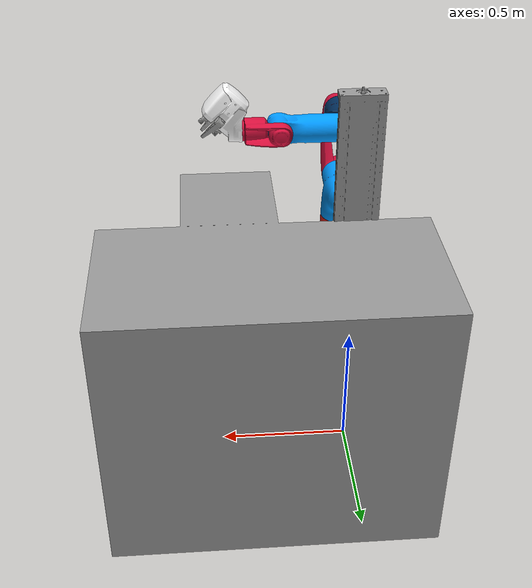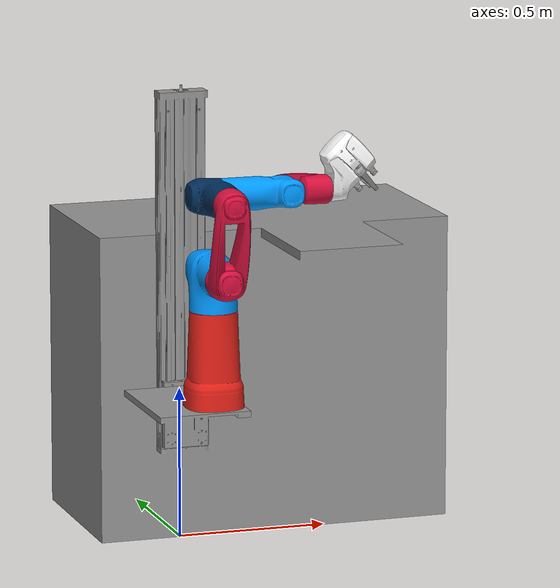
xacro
<?xml version="1.0" ?>
<robot xmlns:xacro="http://www.ros.org/wiki/xacro" name="cobot_esslingen">

  <xacro:include filename="$(find cobot_model)/urdf/robot_model.urdf.xacro"/>
  <xacro:include filename="$(find cobot_model)/urdf/gz_ros_controls.urdf.xacro"/>

  <xacro:arg name="enable_realsense_camera" default="false" />

  <xacro:if value="${'$(arg enable_realsense_camera)' == 'true'}">
    <xacro:arg name="use_nominal_extrinsics" default="false"/>
    <xacro:arg name="add_plug" default="true" />
    <xacro:arg name="use_mesh" default="true" />

    <xacro:include filename="$(find realsense2_description)/urdf/_d435.urdf.xacro" />

    <xacro:sensor_d435 parent="world" use_nominal_extrinsics="$(arg use_nominal_extrinsics)" add_plug="$(arg add_plug)" use_mesh="$(arg use_mesh)">
      <origin xyz="0.441 0.319 1.378" rpy="-0.155 0.843 -1.727"/>
    </xacro:sensor_d435>
  </xacro:if>

</robot>

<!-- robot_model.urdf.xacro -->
<robot xmlns:xacro="http://www.ros.org/wiki/xacro">

    <xacro:arg name="use_collision_meshes" default="true" />

    <link name="world" />
    <joint name="robot_in_world" type="fixed">
        <origin xyz="0.0 0.0 0.32" rpy="0.0 0.0 0.0" />
        <parent link="world" />
        <child link="base_link" />
        <axis xyz="0 0 1" />
    </joint>
    <!-- Links -->
    <link name="base_link" />
    <link name="lin_axis">
        <visual>
            <origin rpy="0.0 0.0 0.0" xyz="0.0 0.0 0.0" />
            <geometry>
                <mesh filename="package://cobot_model/meshes/visual/cobot_base_frame_visual_logo.dae"/>
            </geometry>
            <material name="axis_material">
                <color rgba="0.58 0.58 0.58 1.0"/>
            </material>
        </visual>
        <collision>
            <xacro:if value="${'$(arg use_collision_meshes)' == 'true'}">
                <origin rpy="0.0 0.0 0.0" xyz="0.0 0.0 0.0" />
                <geometry>
                   <mesh filename="package://cobot_model/meshes/collision/cobot_base_frame_collision.stl"/>
                </geometry>
            </xacro:if>
            <xacro:unless value="${'$(arg use_collision_meshes)' == 'true'}">
                <origin rpy="0.0 0.0 0.0" xyz="0.0 -0.03 0.6"/>
                <geometry>
                    <box size="0.162 0.069 1.21"/>
                </geometry>
            </xacro:unless>
        </collision>
        <inertial>
            <mass value="8.6" />
            <origin rpy="0.0 0.0 0.0" xyz="0.0 -0.03 0.6" />
            <inertia ixx="1.03466672" iyy="1.0433778" izz="0.01404452" ixy="0.0" ixz="0.0" iyz="0.0" />
        </inertial>
    </link>
    <link name="lin_axis_carriage">
        <visual>
             <origin rpy="0.0 0.0 0.0" xyz="0.0 0.0 0.0" />
            <geometry>
               <mesh filename="package://cobot_model/meshes/visual/carriage_visual.stl"/>
            </geometry>
            <material name="axis_material">
                <color rgba="0.58 0.58 0.58 1.0"/>
            </material>
        </visual>
        <collision>
            <xacro:if value="${'$(arg use_collision_meshes)' == 'true'}">
                <origin rpy="0.0 0.0 0.0" xyz="0.0 0.0 0.0" />
                <geometry>
                    <mesh filename="package://cobot_model/meshes/collision/carriage_collision.stl"/>
                </geometry>
            </xacro:if>
            <xacro:unless value="${'$(arg use_collision_meshes)' == 'true'}">
                <origin rpy="0.0 0.0 0.0" xyz="-0.06 -0.26 0.2"/>
                <geometry>
                    <box size="0.302 0.431 0.02"/>
                </geometry>
            </xacro:unless>
        </collision>
        <inertial>
            <mass value="0.7" />
            <origin rpy="0.0 0.0 0.0" xyz="0.0 -0.03 0.11" />
            <inertia ixx="0.00287479" iyy="0.00415339" izz="0.00138151" ixy="0.0" ixz="0.0" iyz="0.0" />
        </inertial>
    </link>
    <link name="segment1">
        <visual>
             <origin rpy="0.0 0.0 0.0" xyz="0.0 0.0 0.0" />
            <geometry>
                <!-- using a DAE mesh to display logos -->
               <mesh filename="package://cobot_model/meshes/visual/segment_01_logo.dae"/>
            </geometry>
            <material name="segment1_material">
                <color rgba="0.89 0.133 0.098 1.0" />
            </material>
        </visual>
        <collision>
            <xacro:if value="${'$(arg use_collision_meshes)' == 'true'}">
                <origin rpy="0.0 0.0 0.0" xyz="0.0 0.0 0.0" />
                <geometry>
                    <mesh filename="package://cobot_model/meshes/collision/segment01_collision.stl"/>
                </geometry>
            </xacro:if>
            <xacro:unless value="${'$(arg use_collision_meshes)' == 'true'}">
            <origin rpy="0.0 0.0 0.0" xyz="0.0 0.0 -0.156"/>
                <geometry>
                    <cylinder radius="0.09" length="0.312"/>
                </geometry>
            </xacro:unless>
        </collision>
        <inertial>
            <mass value="7.3" />
             <origin rpy="0.0 0.0 0.0" xyz="0.0 0.0 -0.156" />
            <inertia ixx="0.0697588" iyy="0.0697588" izz="0.0210824" ixy="0.0" ixz="0.0" iyz="0.0" />
        </inertial>
    </link>
    <link name="segment2">
        <visual>
            <origin rpy="0.0 0.0 0.0" xyz="0.0 0.0 0.0" />
            <geometry>
                <mesh filename="package://cobot_model/meshes/visual/segment02_visual.stl"/>
            </geometry>
            <material name="segment2_material">
                <color rgba="0 0.6 1.0 1.0" />
            </material>
        </visual>
        <collision>
            <xacro:if value="${'$(arg use_collision_meshes)' == 'true'}">
                <origin rpy="0.0 0.0 0.0" xyz="0.0 0.0 0.0" />
                <geometry>
                   <mesh filename="package://cobot_model/meshes/collision/segment02_collision.stl"/>
                </geometry>
            </xacro:if>
            <xacro:unless value="${'$(arg use_collision_meshes)' == 'true'}">
                <origin rpy="0.0 0.0 0.0" xyz="0.0 0.0 0.09"/>
                <geometry>
                    <box size="0.155 0.238 0.186"/>
                </geometry>
            </xacro:unless>
        </collision>
        <inertial>
            <mass value="5.0" />
            <origin rpy="0.0 0.0 0.0" xyz="0.0 0.0 0.119" />
            <inertia ixx="0.03441292" iyy="0.02442542" izz="0.03361208" ixy="0.0" ixz="0.0" iyz="0.0" />
        </inertial>
    </link>
    <link name="segment3">
        <visual>
            <origin rpy="0.0 0.0 0.0" xyz="0.0 0.0 0.0" />
            <geometry>
                <mesh filename="package://cobot_model/meshes/visual/segment03_visual.stl"/>
            </geometry>
            <material name="segment3_material">
               <color rgba="0.835 0.059 0.235 1.0" />
            </material>
        </visual>
        <collision>
            <xacro:if value="${'$(arg use_collision_meshes)' == 'true'}">
                <origin rpy="0.0 0.0 0.0" xyz="0.0 0.0 0.0" />
                <geometry>
                    <mesh filename="package://cobot_model/meshes/collision/segment03_collision.stl"/>
                </geometry>
            </xacro:if>
            <xacro:unless value="${'$(arg use_collision_meshes)' == 'true'}">
                <origin rpy="1.5708 0.0 0.0" xyz="0.0 0.126 0.06"/>
                <geometry>
                    <cylinder radius="0.06" length="0.372"/>
                </geometry>
            </xacro:unless>
        </collision>
        <inertial>
            <mass value="2.5" />
            <origin rpy="0.0 0.0 0.0" xyz="0.0 0.126 0.06" />
            <inertia ixx="0.06515833" ixy="0.0" ixz="0.0" iyy="0.01316667" iyz="-0.0189" izz="0.05607417" />
        </inertial>
    </link>
    <link name="segment4">
        <visual>
            <origin rpy="0.0 0.0 0.0" xyz="0.0 0.0 0.0" />
            <geometry>
                <mesh filename="package://cobot_model/meshes/visual/segment04_visual.stl"/>
            </geometry>
            <material name="segment4_material">
                <color rgba="0.004 0.176 0.353 1.0" />
            </material>
        </visual>
        <collision>
            <xacro:if value="${'$(arg use_collision_meshes)' == 'true'}">
                <origin rpy="0.0 0.0 0.0" xyz="0.0 0.0 0.0" />
                <geometry>
                    <mesh filename="package://cobot_model/meshes/collision/segment04_collision.stl"/>
                </geometry>
            </xacro:if>
            <xacro:unless value="${'$(arg use_collision_meshes)' == 'true'}">
                <origin rpy="0.0 0.0 0.0" xyz="0.0 0.0 -0.1125"/>
                <geometry>
                    <cylinder radius="0.07" length="0.225"/>
                </geometry>
            </xacro:unless>
        </collision>
        <inertial>
            <mass value="3.4" />
            <origin rpy="0.0 0.0 0.0" xyz="0.0 0.0 -0.112" />
            <inertia ixx="0.01850875" ixy="0.0" ixz="0.0" iyy="0.01850875" iyz="0.0" izz="0.00833" />
        </inertial>
    </link>
    <link name="segment5">
        <visual>
            <origin rpy="0.0 0.0 0.0" xyz="0.0 0.0 0.0" />
            <geometry>
                <mesh filename="package://cobot_model/meshes/visual/segment05_visual.stl"/>
            </geometry>
            <material name="segment5_material">
                <color rgba="0 0.6 1.0 1.0" />
            </material>
        </visual>
        <collision>
            <xacro:if value="${'$(arg use_collision_meshes)' == 'true'}">
                <origin rpy="0.0 0.0 0.0" xyz="0.0 0.0 0.0" />
                <geometry>
                    <mesh filename="package://cobot_model/meshes/collision/segment05_collision.stl"/>
                </geometry>
            </xacro:if>
            <xacro:unless value="${'$(arg use_collision_meshes)' == 'true'}">
                <origin rpy="0.0 0.0 0.0" xyz="0.0 0.0 0.1"/>
                <geometry>
                    <cylinder radius="0.07" length="0.23"/>
                </geometry>
            </xacro:unless>
        </collision>
        <inertial>
            <mass value="3.0" />
            <origin rpy="0.0 0.0 0.0" xyz="0.0 0.0 0.071" />
            <inertia ixx="0.02173675" iyy="0.02173675" izz="0.0075615" ixy="0.0" ixz="0.0" iyz="0.0" />
        </inertial>
    </link>
    <link name="segment6">
        <visual>
            <origin rpy="0.0 0.0 0.0" xyz="0.0 0.0 0.0" />
            <geometry>
                <mesh filename="package://cobot_model/meshes/visual/segment06_visual.stl"/>
            </geometry>
            <material name="segment6_material">
                <color rgba="0.835 0.059 0.235 1.0" />
            </material>
        </visual>
        <collision>
            <xacro:if value="${'$(arg use_collision_meshes)' == 'true'}">
                <origin rpy="0.0 0.0 0.0" xyz="0.0 0.0 0.0" />
                <geometry>
                    <mesh filename="package://cobot_model/meshes/collision/segment06_collision.stl"/>
                </geometry>
             </xacro:if>
            <xacro:unless value="${'$(arg use_collision_meshes)' == 'true'}">
                <origin rpy="0.0 1.5708 0.0" xyz="-0.12 0.0 -0.04"/>
                <geometry>
                    <cylinder length="0.15" radius="0.04"/>
                </geometry>
            </xacro:unless>
        </collision>
        <inertial>
            <mass value="1.5" />
            <origin rpy="0.0 0.0 0.0" xyz="-0.05 0.0 0.0" />
            <inertia ixx="0.00319363" iyy="0.00513113" izz="0.0061625" ixy="0.0" ixz="0.0" iyz="0.0" />
        </inertial>
    </link>
      <link name="segment7">
        <visual>
            <origin rpy="0.0 0.0 0.0" xyz="0.0 0.0 0.0"/>
            <material name="Aterul">
                <color rgba="1.0 1.0 1.0 1.0"/>
            </material>
            <geometry>
                 <mesh filename="package://cobot_model/meshes/visual/segment07_visual.stl" />
            </geometry>
        </visual>
        <collision>
            <xacro:if value="${'$(arg use_collision_meshes)' == 'true'}">
                <origin rpy="0.0 0.0 0.0" xyz="0.0 0.0 0.0"/>
                <geometry>
                    <mesh filename="package://cobot_model/meshes/collision/segment07_collision.stl"/>
                </geometry>
            </xacro:if>
            <xacro:unless value="${'$(arg use_collision_meshes)' == 'true'}">
                <origin rpy="-0.785398 0.0 0.0" xyz="0.0 0.1 0.05"/>
                <geometry>
                    <box size="0.124 0.135 0.14"/>
                </geometry>
            </xacro:unless>
        </collision>
        <inertial>
            <mass value="4.0"/>
            <!-- tilt the inertia tensor by 45 deg to match the actual mesh
                 => same tilt is applied in the tool_base link -->
            <origin rpy="0.785398 0.0 0.0" xyz="0.0 0.09 0.04"/>
           <inertia ixx="0.01533367" iyy="0.02185067" izz="0.02693367" ixy="0.0" ixz="0.0" iyz="0.0" />
        </inertial>
    </link>
    <link name="finger1">
        <visual>
            <origin rpy="0.0 0.0 0.0" xyz="0.0 0.0 0.0"/>
            <material name="silver">
                <color rgba="0.629 0.629 0.625 1.0" />
            </material>
            <geometry>
                <mesh filename="package://cobot_model/meshes/visual/finger01_visual.stl"/>
            </geometry>
        </visual>
        <collision>
            <xacro:if value="${'$(arg use_collision_meshes)' == 'true'}">
                <origin rpy="0.0 0.0 0.0" xyz="0.0 0.0 0.0"/>
                <geometry>
                        <mesh filename="package://cobot_model/meshes/collision/finger01_collision.stl"/>
                </geometry>
            </xacro:if>
            <xacro:unless value="${'$(arg use_collision_meshes)' == 'true'}">
                <!-- tilt geometric object by 15 deg to match real gripper -->
                <origin rpy="0.0 -0.261799 0.0" xyz="0.046 0.0 0.056"/>
                <geometry>
                    <cylinder length="0.10" radius="0.01"/>
                </geometry>
            </xacro:unless>
        </collision>
        <inertial>
            <mass value="0.05" />
            <origin rpy="0.0 -0.261799 0.0" xyz="0.046 0.0 0.056"/>
            <inertia ixx="3.46666667e-05" iyy="2.64166667e-05" izz="1.78833333e-05" ixy="0.0" ixz="0.0" iyz="0.0" />
        </inertial>
    </link>
    <link name="finger2">
        <visual>
            <origin rpy="0.0 0.0 0.0" xyz="0.0 0.0 0.0"/>
            <material name="silver">
                <color rgba="0.629 0.629 0.625 1.0" />
            </material>
            <geometry>
                <mesh filename="package://cobot_model/meshes/visual/finger02_visual.stl"/>
            </geometry>
        </visual>
        <collision>
            <xacro:if value="${'$(arg use_collision_meshes)' == 'true'}">
                <origin rpy="0.0 0.0 0.0" xyz="0.0 0.0 0.0"/>
                <geometry>
                    <mesh filename="package://cobot_model/meshes/collision/finger02_collision.stl"/>
                </geometry>
            </xacro:if>
            <xacro:unless value="${'$(arg use_collision_meshes)' == 'true'}">
                <origin rpy="0.0 0.261799 0.0" xyz="-0.046 0.0 0.056"/>
                <geometry>
                    <cylinder length="0.10" radius="0.01"/>
                </geometry>
            </xacro:unless>
        </collision>
        <inertial>
            <mass value="0.05" />
            <origin rpy="0.0 0.261799 0.0" xyz="-0.046 0.0 0.056"/>
            <inertia ixx="3.46666667e-05" iyy="2.64166667e-05" izz="1.78833333e-05" ixy="0.0" ixz="0.0" iyz="0.0" />
        </inertial>
    </link>
    <link name="vacuum_gripper_up">
    <visual>
      <origin rpy="0.0 0.0 0.0" xyz="0.0 0.0 0.0"/>
      <material name="silver">
        <color rgba="0.629 0.629 0.625 1.0"/>
      </material>
      <geometry>
        <mesh filename="package://cobot_model/meshes/visual/vacuum_visual.stl"/>
      </geometry>
    </visual>
    <collision>
    <xacro:if value="${'$(arg use_collision_meshes)' == 'true'}">
        <origin rpy="0.0 0.0 0.0" xyz="0.0 0.0 0.0"/>
        <geometry>
            <mesh filename="package://cobot_model/meshes/collision/vacuum_collision.stl"/>
        </geometry>
    </xacro:if>
    <xacro:unless value="${'$(arg use_collision_meshes)' == 'true'}">
        <origin rpy="0.0 0.0 0.0" xyz="0.0 0.0 0.03"/>
        <geometry>
            <cylinder length="0.10" radius="0.01"/>
        </geometry>
    </xacro:unless>
    </collision>
    <inertial>
      <mass value="0.05"/>
      <origin rpy="0.0 0.0 0.0" xyz="0.0 0.0 0.05"/>
      <inertia ixx="2.08333333e-05" ixy="0.0" ixz="0.0" iyy="2.08333333e-05" iyz="0.0" izz="2.08333333e-05"/>
    </inertial>
  </link>
  <link name="vacuum_gripper_down">
    <visual>
      <origin rpy="0.0 0.0 0.0" xyz="0.0 0.0 0.0"/>
      <material name="silver">
        <color rgba="0.629 0.629 0.625 1.0"/>
      </material>
      <geometry>
        <!-- using the same mesh as for the upper vacuum gripper (they look the same in the model) -->
        <mesh filename="package://cobot_model/meshes/visual/vacuum_visual.stl"/>
      </geometry>
    </visual>
    <collision>
        <xacro:if value="${'$(arg use_collision_meshes)' == 'true'}">
            <origin rpy="0.0 0.0 0.0" xyz="0.0 0.0 0.0"/>
            <geometry>
                <!-- using the same mesh as for the upper vacuum gripper (they look the same in the model) -->
                <mesh filename="package://cobot_model/meshes/collision/vacuum_collision.stl"/>
            </geometry>
        </xacro:if>
       <xacro:unless value="${'$(arg use_collision_meshes)' == 'true'}">
            <origin rpy="0.0 0.0 0.0" xyz="0.0 0.0 0.03"/>
            <geometry>
                <cylinder length="0.10" radius="0.01"/>
            </geometry>
       </xacro:unless>
    </collision>
    <inertial>
      <mass value="0.05"/>
      <origin rpy="0.0 0.0 0.0" xyz="0.0 0.0 0.05"/>
      <inertia ixx="2.08333333e-05" ixy="0.0" ixz="0.0" iyy="2.08333333e-05" iyz="0.0" izz="2.08333333e-05"/>
    </inertial>
  </link>

    <link name="flange"/>
    <link name="tool_base"/>

    <link name="gripper_tcp"/>
    <link name="gripper_tcp_world"/>
    <link name="gripper_tcp_world_tilted_up"/>
    <link name="gripper_tcp_world_tilted_down"/>
    <link name="vacuum_up_tcp"/>
    <link name="vacuum_up_tcp_world"/>
    <link name="vacuum_up_tcp_world_tilted_up"/>
    <link name="vacuum_up_tcp_world_tilted_down"/>
    <link name="vacuum_down_tcp"/>
    <link name="vacuum_down_tcp_world"/>
    <link name="vacuum_down_tcp_world_tilted_up"/>
    <link name="vacuum_down_tcp_world_tilted_down"/>

    <!-- Joints -->
    <joint name="joint_0" type="prismatic">
        <origin rpy="0.0 0.0 0.0" xyz="0.0 0.0 0.0" />
        <parent link="lin_axis" />
        <child link="lin_axis_carriage" />
        <axis xyz="0 0 1" />
        <limit effort="300.0" velocity="3.14159" lower="-0.001" upper="0.894" />
    </joint>
    <joint name="mount_fixture" type="fixed">
        <origin rpy="0.0 0.0 0.0" xyz="0.0 -0.37 0.52" />
        <parent link="lin_axis_carriage" />
        <child link="segment1" />
    </joint>
    <joint name="joint_1" type="revolute">
        <origin rpy="0.0 0.0 0.0" xyz="0.0 0.0 0.0"/>
        <parent link="segment1" />
        <child link="segment2" />
        <axis xyz="0 0 1" />
        <limit effort="200.0" velocity="3.14159" lower="-2.37365" upper="2.37365" />
        <dynamics damping="0.0" friction="0.0" />
    </joint>
    <joint name="joint_2" type="revolute">
        <origin rpy="1.5708 0.0 0.0" xyz="0.0 -0.111 0.118"/>
        <parent link="segment2" />
        <child link="segment3" />
        <axis xyz="0 0 1" />
        <limit effort="150.0" velocity="3.14159" lower="-2.26893" upper="0.785398" />
        <dynamics damping="0.0" friction="0.0" />
    </joint>
    <joint name="joint_3" type="revolute">
         <origin rpy="0.0 0.0 0.0" xyz="0.0 0.254 0.06"/>
        <parent link="segment3" />
        <child link="segment4" />
        <axis xyz="0 0 1" />
        <limit effort="100.0" velocity="3.14159" lower="-0.785398" upper="2.26893" />
        <dynamics damping="0.0" friction="0.0" />
    </joint>
    <joint name="joint_4" type="revolute">
        <origin rpy="0.0 1.5708 0.0" xyz="0.062 0.0 -0.168"/>
        <parent link="segment4" />
        <child link="segment5" />
        <axis xyz="0 0 1" />
        <limit effort="50.0" velocity="3.14159" lower="-1.5708" upper="1.5708" />
        <dynamics damping="0.0" friction="0.0" />
    </joint>
    <joint name="joint_5" type="revolute">
        <origin rpy="0.0 1.5708 0.0" xyz="0.042 0.0 0.183"/>
        <parent link="segment5" />
        <child link="segment6" />
        <axis xyz="0 0 1" />
        <limit effort="50.0" velocity="3.14159" lower="-1.5708" upper="1.5708" />
        <dynamics damping="0.0" friction="0.0" />
    </joint>
    <joint name="joint_6" type="revolute">
        <origin rpy="0.0 -1.5708 0.0" xyz="-0.156 0.0 -0.04"/>
        <parent link="segment6"/>
        <child link="segment7"/>
        <axis xyz="0 0 1"/>
        <limit effort="20." lower="-2.37365" upper="2.37365" velocity="3.14159"/>
        <dynamics damping="0.0" friction="0.0"/>
    </joint>
   <joint name="JFix_Base" type="fixed">
        <origin rpy="0.0 0.0 0.0" xyz="0.0 0.0 0.0" />
        <parent link="base_link" />
        <child link="lin_axis" />
    </joint>
    <joint name="flange_fixed" type="fixed">
        <origin rpy="0.0 0.0 0.0" xyz="0.0 0.0 0.0"/>
        <parent link="segment7"/>
        <child link="flange"/>
     </joint>
    <joint name="tool_mount" type="fixed">
        <!-- tilt tool base by 45 deg + move coordinate frame -->
        <origin rpy="0.785398 0.0 0.0" xyz="0.0 0.072 0.060"/>
        <parent link="flange"/>
        <child link="tool_base"/>
    </joint>

    <joint name="gripper_tcp_mount" type="fixed">
        <!-- place gripper TCP in between the fingers (z-direction) -->
        <origin rpy="0.0 0.0 0.0" xyz="0.0 0.0 0.075"/>
        <parent link="tool_base"/>
        <child link="gripper_tcp"/>
    </joint>
    <joint name="gripper_tcp_world_mount" type="fixed">
        <!-- reverse all previous rotations -->
        <origin rpy="-3.14159 -0.785398 1.5708" xyz="0.0 0.0 0.0"/>
        <parent link="gripper_tcp"/>
        <child link="gripper_tcp_world"/>
    </joint>
    <joint name="gripper_tcp_world_tilted_up_mount" type="fixed">
        <!-- tilt gripper tcp in world frame by -45 deg to compensate for natural tilt -->
        <origin rpy="0.0 -0.785398 0.0" xyz="0.0 0.0 0.0"/>
        <parent link="gripper_tcp_world"/>
        <child link="gripper_tcp_world_tilted_up"/>
    </joint>
    <joint name="gripper_tcp_world_tilted_down_mount" type="fixed">
        <!-- tilt gripper tcp in world frame by 135 deg to compensate for natural tilt with z-axis looking down -->
        <origin rpy="0.0 2.35619 0.0" xyz="0.0 0.0 0.0"/>
        <parent link="gripper_tcp_world"/>
        <child link="gripper_tcp_world_tilted_down"/>
    </joint>
    <joint name="finger1_joint" type="prismatic">
        <origin rpy="0.0 0.0 0.0" xyz="0.0 0.0 0.0"/>
        <parent link="tool_base" />
        <child link="finger1" />
        <axis xyz="-1 0 0" />
        <limit effort="30.0" velocity="0.1" lower="-0.01" upper="0.029" />
    </joint>
    <joint name="finger2_joint" type="prismatic">
        <origin rpy="0.0 0.0 0.0" xyz="0.0 0.0 0.0"/>
        <parent link="tool_base" />
        <child link="finger2" />
        <axis xyz="1 0 0" />
        <limit effort="30.0" velocity="0.1" lower="-0.01" upper="0.029" />
        <mimic joint="finger1_joint" />
    </joint>

    <joint name="vacuum_up_joint" type="prismatic">
        <origin rpy="0.0 0.0 0.0" xyz="0.0 0.035 0.0"/>
        <parent link="tool_base"/>
        <child link="vacuum_gripper_up"/>
        <axis xyz="0 0 1"/>
        <limit effort="30.0" lower="-0.01" upper="0.055" velocity="0.1"/>
    </joint>
    <joint name="vacuum_up_tcp_mount" type="fixed">
        <!-- place TCP at the end of the tool (z-direction) -->
        <origin rpy="0.0 0.0 0.0" xyz="0.0 0.0 0.07"/>
        <parent link="vacuum_gripper_up"/>
        <child link="vacuum_up_tcp"/>
    </joint>
    <joint name="vacuum_up_tcp_world_mount" type="fixed">
        <!-- reverse all previous rotations -->
        <origin rpy="-3.14159 -0.785398 1.5708" xyz="0.0 0.0 0.0"/>
        <parent link="vacuum_up_tcp"/>
        <child link="vacuum_up_tcp_world"/>
    </joint>
    <joint name="vacuum_up_tcp_world_tilted_up_mount" type="fixed">
        <!-- tilt gripper tcp in world frame by -45 deg to compensate for natural tilt -->
        <origin rpy="0.0 -0.785398 0.0" xyz="0.0 0.0 0.0"/>
        <parent link="vacuum_up_tcp_world"/>
        <child link="vacuum_up_tcp_world_tilted_up"/>
    </joint>
    <joint name="vacuum_up_tcp_world_tilted_down_mount" type="fixed">
        <!-- tilt gripper tcp in world frame by 135 deg to compensate for natural tilt with z-axis looking down -->
        <origin rpy="0.0 2.35619 0.0" xyz="0.0 0.0 0.0"/>
        <parent link="vacuum_up_tcp_world"/>
        <child link="vacuum_up_tcp_world_tilted_down"/>
    </joint>
    <joint name="vacuum_down_joint" type="prismatic">
        <origin rpy="0.0 0.0 0.0" xyz="0.0 -0.035 0.0"/>
        <parent link="tool_base"/>
        <child link="vacuum_gripper_down"/>
        <axis xyz="0 0 1"/>
        <limit effort="30.0" lower="-0.01" upper="0.055" velocity="0.1"/>
    </joint>
    <joint name="vacuum_down_tcp_mount" type="fixed">
        <!-- place TCP at the end of the tool (z-direction) -->
        <origin rpy="0.0 0.0 0.0" xyz="0.0 0.0 0.07"/>
        <parent link="vacuum_gripper_down"/>
        <child link="vacuum_down_tcp"/>
    </joint>
    <joint name="vacuum_down_tcp_world_mount" type="fixed">
        <!-- reverse all previous rotations -->
        <origin rpy="-3.14159 -0.785398 1.5708" xyz="0.0 0.0 0.0"/>
        <parent link="vacuum_down_tcp"/>
        <child link="vacuum_down_tcp_world"/>
    </joint>
    <joint name="vacuum_down_tcp_world_tilted_up_mount" type="fixed">
        <!-- tilt gripper tcp in world frame by -45 deg to compensate for natural tilt -->
        <origin rpy="0.0 -0.785398 0.0" xyz="0.0 0.0 0.0"/>
        <parent link="vacuum_down_tcp_world"/>
        <child link="vacuum_down_tcp_world_tilted_up"/>
    </joint>
    <joint name="vacuum_down_tcp_world_tilted_down_mount" type="fixed">
        <!-- tilt gripper tcp in world frame by 135 deg to compensate for natural tilt with z-axis looking down -->
        <origin rpy="0.0 2.35619 0.0" xyz="0.0 0.0 0.0"/>
        <parent link="vacuum_down_tcp_world"/>
        <child link="vacuum_down_tcp_world_tilted_down"/>
    </joint>
</robot>
